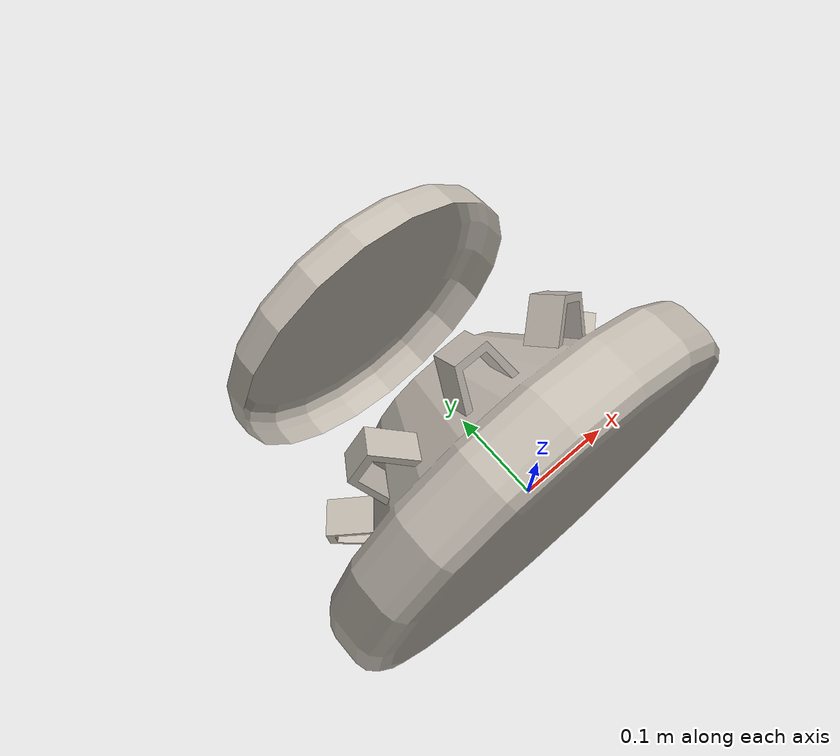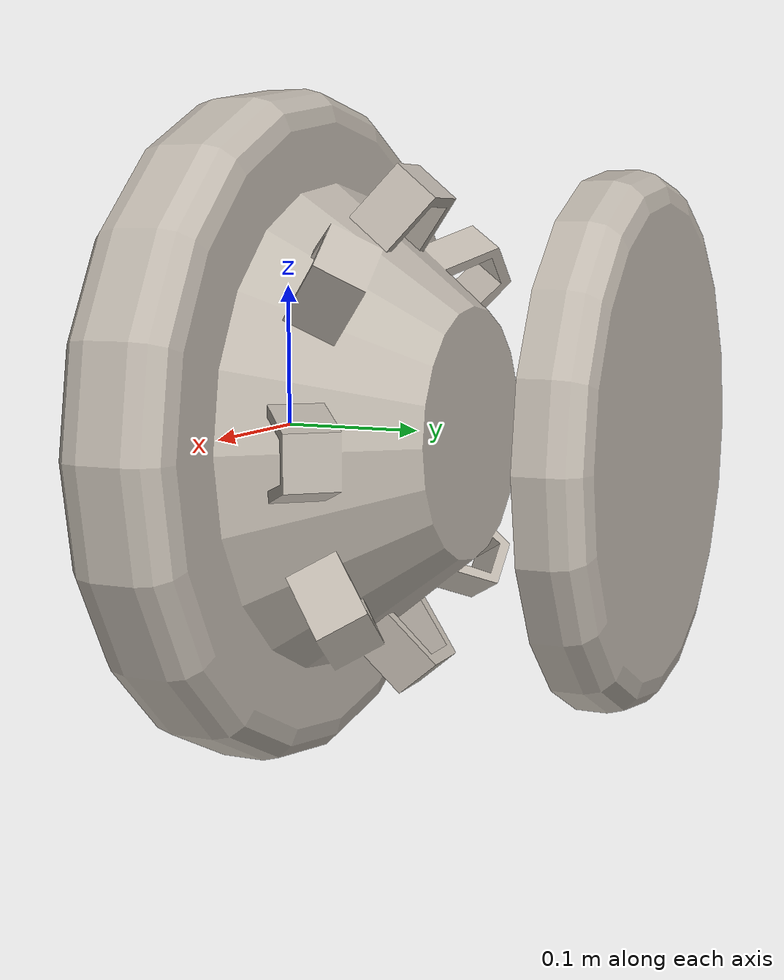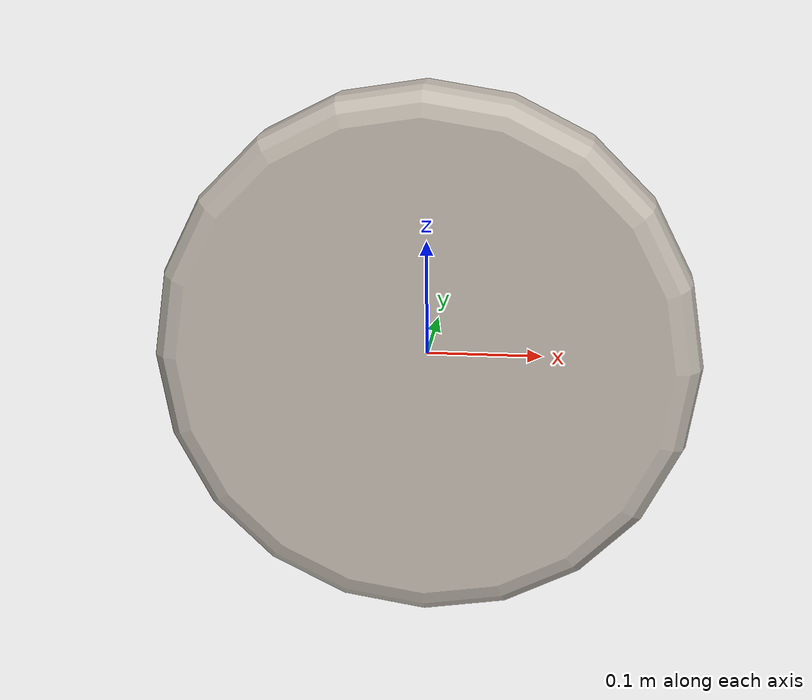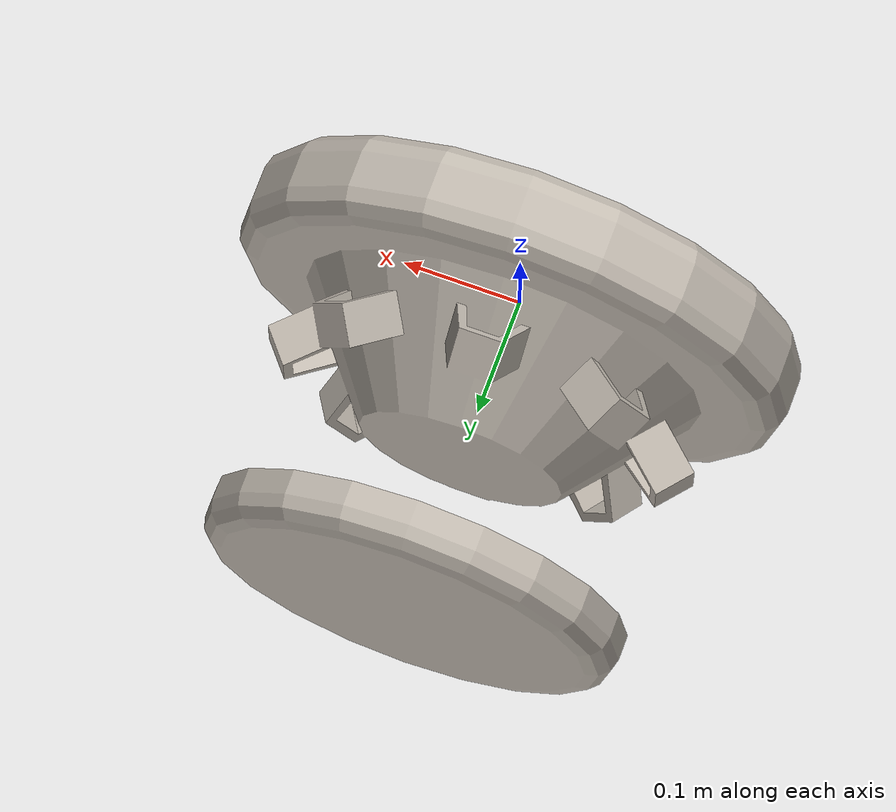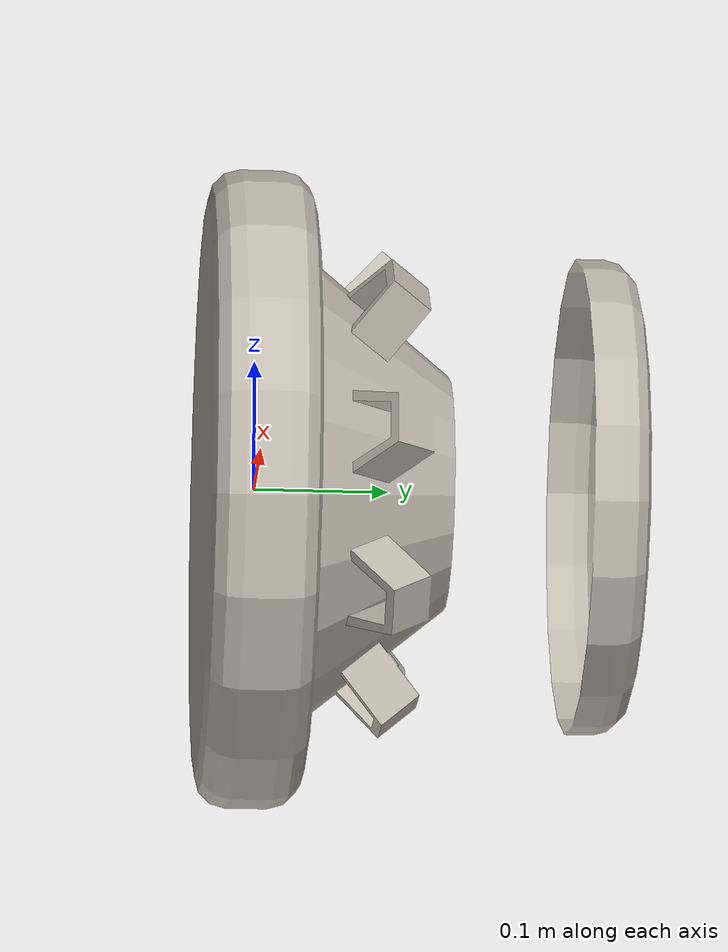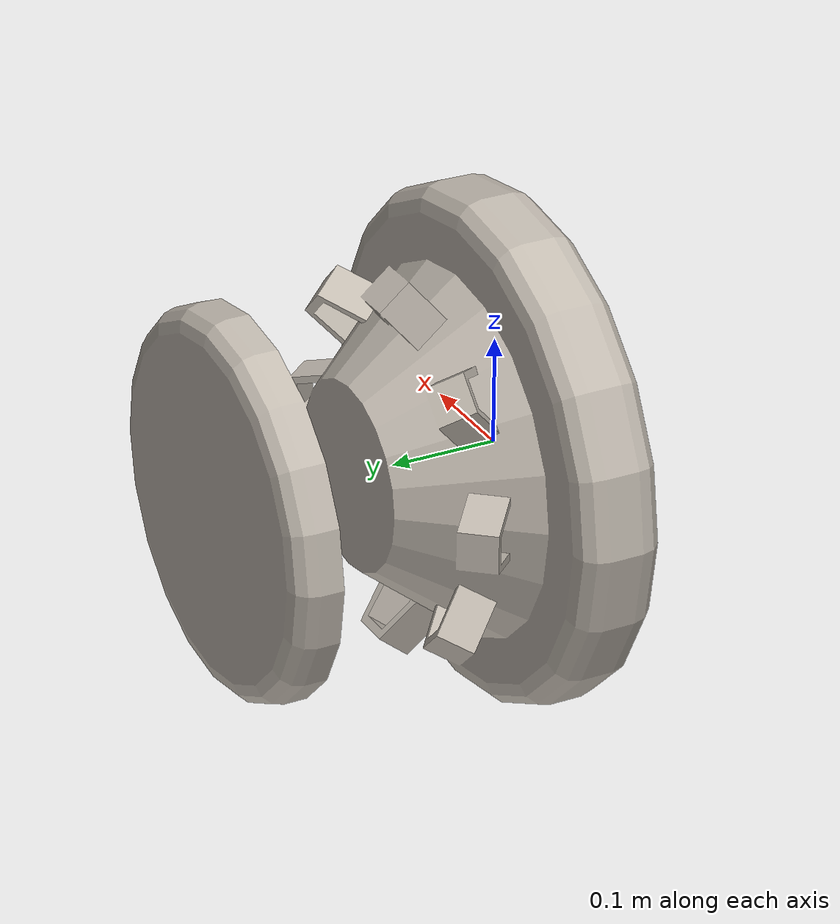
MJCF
<mujoco model="0af3d81c117e4e8aa84757b8f0df2ea8">
  <default>
    <default class="visual">
      <geom group="2" type="mesh" contype="0" conaffinity="0"/>
    </default>
    <default class="collision">
      <geom group="3" type="mesh"/>
    </default>
  </default>
  <asset>
    <texture type="2d" name="lambert8" file="lambert8.png"/>
    <material name="lambert8" texture="lambert8" specular="0.4000000000000001" shininess="0.001"/>
    <mesh file="0af3d81c117e4e8aa84757b8f0df2ea8.obj"/>
    <mesh file="0af3d81c117e4e8aa84757b8f0df2ea8_collision_0.obj"/>
    <mesh file="0af3d81c117e4e8aa84757b8f0df2ea8_collision_1.obj"/>
    <mesh file="0af3d81c117e4e8aa84757b8f0df2ea8_collision_2.obj"/>
    <mesh file="0af3d81c117e4e8aa84757b8f0df2ea8_collision_3.obj"/>
    <mesh file="0af3d81c117e4e8aa84757b8f0df2ea8_collision_4.obj"/>
    <mesh file="0af3d81c117e4e8aa84757b8f0df2ea8_collision_5.obj"/>
    <mesh file="0af3d81c117e4e8aa84757b8f0df2ea8_collision_6.obj"/>
    <mesh file="0af3d81c117e4e8aa84757b8f0df2ea8_collision_7.obj"/>
    <mesh file="0af3d81c117e4e8aa84757b8f0df2ea8_collision_8.obj"/>
    <mesh file="0af3d81c117e4e8aa84757b8f0df2ea8_collision_9.obj"/>
    <mesh file="0af3d81c117e4e8aa84757b8f0df2ea8_collision_10.obj"/>
    <mesh file="0af3d81c117e4e8aa84757b8f0df2ea8_collision_11.obj"/>
    <mesh file="0af3d81c117e4e8aa84757b8f0df2ea8_collision_12.obj"/>
    <mesh file="0af3d81c117e4e8aa84757b8f0df2ea8_collision_13.obj"/>
    <mesh file="0af3d81c117e4e8aa84757b8f0df2ea8_collision_14.obj"/>
    <mesh file="0af3d81c117e4e8aa84757b8f0df2ea8_collision_15.obj"/>
    <mesh file="0af3d81c117e4e8aa84757b8f0df2ea8_collision_16.obj"/>
    <mesh file="0af3d81c117e4e8aa84757b8f0df2ea8_collision_17.obj"/>
    <mesh file="0af3d81c117e4e8aa84757b8f0df2ea8_collision_18.obj"/>
    <mesh file="0af3d81c117e4e8aa84757b8f0df2ea8_collision_19.obj"/>
    <mesh file="0af3d81c117e4e8aa84757b8f0df2ea8_collision_20.obj"/>
    <mesh file="0af3d81c117e4e8aa84757b8f0df2ea8_collision_21.obj"/>
    <mesh file="0af3d81c117e4e8aa84757b8f0df2ea8_collision_22.obj"/>
    <mesh file="0af3d81c117e4e8aa84757b8f0df2ea8_collision_23.obj"/>
    <mesh file="0af3d81c117e4e8aa84757b8f0df2ea8_collision_24.obj"/>
    <mesh file="0af3d81c117e4e8aa84757b8f0df2ea8_collision_25.obj"/>
    <mesh file="0af3d81c117e4e8aa84757b8f0df2ea8_collision_26.obj"/>
    <mesh file="0af3d81c117e4e8aa84757b8f0df2ea8_collision_27.obj"/>
    <mesh file="0af3d81c117e4e8aa84757b8f0df2ea8_collision_28.obj"/>
    <mesh file="0af3d81c117e4e8aa84757b8f0df2ea8_collision_29.obj"/>
    <mesh file="0af3d81c117e4e8aa84757b8f0df2ea8_collision_30.obj"/>
    <mesh file="0af3d81c117e4e8aa84757b8f0df2ea8_collision_31.obj"/>
    <mesh file="0af3d81c117e4e8aa84757b8f0df2ea8_collision_32.obj"/>
    <mesh file="0af3d81c117e4e8aa84757b8f0df2ea8_collision_33.obj"/>
    <mesh file="0af3d81c117e4e8aa84757b8f0df2ea8_collision_34.obj"/>
    <mesh file="0af3d81c117e4e8aa84757b8f0df2ea8_collision_35.obj"/>
    <mesh file="0af3d81c117e4e8aa84757b8f0df2ea8_collision_36.obj"/>
    <mesh file="0af3d81c117e4e8aa84757b8f0df2ea8_collision_37.obj"/>
    <mesh file="0af3d81c117e4e8aa84757b8f0df2ea8_collision_38.obj"/>
    <mesh file="0af3d81c117e4e8aa84757b8f0df2ea8_collision_39.obj"/>
    <mesh file="0af3d81c117e4e8aa84757b8f0df2ea8_collision_40.obj"/>
    <mesh file="0af3d81c117e4e8aa84757b8f0df2ea8_collision_41.obj"/>
    <mesh file="0af3d81c117e4e8aa84757b8f0df2ea8_collision_42.obj"/>
    <mesh file="0af3d81c117e4e8aa84757b8f0df2ea8_collision_43.obj"/>
    <mesh file="0af3d81c117e4e8aa84757b8f0df2ea8_collision_44.obj"/>
    <mesh file="0af3d81c117e4e8aa84757b8f0df2ea8_collision_45.obj"/>
    <mesh file="0af3d81c117e4e8aa84757b8f0df2ea8_collision_46.obj"/>
    <mesh file="0af3d81c117e4e8aa84757b8f0df2ea8_collision_47.obj"/>
    <mesh file="0af3d81c117e4e8aa84757b8f0df2ea8_collision_48.obj"/>
    <mesh file="0af3d81c117e4e8aa84757b8f0df2ea8_collision_49.obj"/>
    <mesh file="0af3d81c117e4e8aa84757b8f0df2ea8_collision_50.obj"/>
    <mesh file="0af3d81c117e4e8aa84757b8f0df2ea8_collision_51.obj"/>
    <mesh file="0af3d81c117e4e8aa84757b8f0df2ea8_collision_52.obj"/>
    <mesh file="0af3d81c117e4e8aa84757b8f0df2ea8_collision_53.obj"/>
    <mesh file="0af3d81c117e4e8aa84757b8f0df2ea8_collision_54.obj"/>
    <mesh file="0af3d81c117e4e8aa84757b8f0df2ea8_collision_55.obj"/>
    <mesh file="0af3d81c117e4e8aa84757b8f0df2ea8_collision_56.obj"/>
    <mesh file="0af3d81c117e4e8aa84757b8f0df2ea8_collision_57.obj"/>
    <mesh file="0af3d81c117e4e8aa84757b8f0df2ea8_collision_58.obj"/>
    <mesh file="0af3d81c117e4e8aa84757b8f0df2ea8_collision_59.obj"/>
    <mesh file="0af3d81c117e4e8aa84757b8f0df2ea8_collision_60.obj"/>
    <mesh file="0af3d81c117e4e8aa84757b8f0df2ea8_collision_61.obj"/>
    <mesh file="0af3d81c117e4e8aa84757b8f0df2ea8_collision_62.obj"/>
    <mesh file="0af3d81c117e4e8aa84757b8f0df2ea8_collision_63.obj"/>
    <mesh file="0af3d81c117e4e8aa84757b8f0df2ea8_collision_64.obj"/>
    <mesh file="0af3d81c117e4e8aa84757b8f0df2ea8_collision_65.obj"/>
    <mesh file="0af3d81c117e4e8aa84757b8f0df2ea8_collision_66.obj"/>
    <mesh file="0af3d81c117e4e8aa84757b8f0df2ea8_collision_67.obj"/>
    <mesh file="0af3d81c117e4e8aa84757b8f0df2ea8_collision_68.obj"/>
    <mesh file="0af3d81c117e4e8aa84757b8f0df2ea8_collision_69.obj"/>
    <mesh file="0af3d81c117e4e8aa84757b8f0df2ea8_collision_70.obj"/>
    <mesh file="0af3d81c117e4e8aa84757b8f0df2ea8_collision_71.obj"/>
    <mesh file="0af3d81c117e4e8aa84757b8f0df2ea8_collision_72.obj"/>
    <mesh file="0af3d81c117e4e8aa84757b8f0df2ea8_collision_73.obj"/>
    <mesh file="0af3d81c117e4e8aa84757b8f0df2ea8_collision_74.obj"/>
    <mesh file="0af3d81c117e4e8aa84757b8f0df2ea8_collision_75.obj"/>
    <mesh file="0af3d81c117e4e8aa84757b8f0df2ea8_collision_76.obj"/>
    <mesh file="0af3d81c117e4e8aa84757b8f0df2ea8_collision_77.obj"/>
    <mesh file="0af3d81c117e4e8aa84757b8f0df2ea8_collision_78.obj"/>
    <mesh file="0af3d81c117e4e8aa84757b8f0df2ea8_collision_79.obj"/>
    <mesh file="0af3d81c117e4e8aa84757b8f0df2ea8_collision_80.obj"/>
    <mesh file="0af3d81c117e4e8aa84757b8f0df2ea8_collision_81.obj"/>
    <mesh file="0af3d81c117e4e8aa84757b8f0df2ea8_collision_82.obj"/>
    <mesh file="0af3d81c117e4e8aa84757b8f0df2ea8_collision_83.obj"/>
    <mesh file="0af3d81c117e4e8aa84757b8f0df2ea8_collision_84.obj"/>
    <mesh file="0af3d81c117e4e8aa84757b8f0df2ea8_collision_85.obj"/>
    <mesh file="0af3d81c117e4e8aa84757b8f0df2ea8_collision_86.obj"/>
    <mesh file="0af3d81c117e4e8aa84757b8f0df2ea8_collision_87.obj"/>
    <mesh file="0af3d81c117e4e8aa84757b8f0df2ea8_collision_88.obj"/>
    <mesh file="0af3d81c117e4e8aa84757b8f0df2ea8_collision_89.obj"/>
    <mesh file="0af3d81c117e4e8aa84757b8f0df2ea8_collision_90.obj"/>
    <mesh file="0af3d81c117e4e8aa84757b8f0df2ea8_collision_91.obj"/>
    <mesh file="0af3d81c117e4e8aa84757b8f0df2ea8_collision_92.obj"/>
    <mesh file="0af3d81c117e4e8aa84757b8f0df2ea8_collision_93.obj"/>
    <mesh file="0af3d81c117e4e8aa84757b8f0df2ea8_collision_94.obj"/>
    <mesh file="0af3d81c117e4e8aa84757b8f0df2ea8_collision_95.obj"/>
  </asset>
  <worldbody>
    <body name="0af3d81c117e4e8aa84757b8f0df2ea8">
      <freejoint/>
      <geom material="lambert8" mesh="0af3d81c117e4e8aa84757b8f0df2ea8" class="visual"/>
      <geom mesh="0af3d81c117e4e8aa84757b8f0df2ea8_collision_0" rgba="0.9400696645846283 0.7830792774710258 0.9853746197354648 1" class="collision"/>
      <geom mesh="0af3d81c117e4e8aa84757b8f0df2ea8_collision_1" rgba="0.4881837335549224 0.7597404529663597 0.974912022002862 1" class="collision"/>
      <geom mesh="0af3d81c117e4e8aa84757b8f0df2ea8_collision_2" rgba="0.933074333632284 0.7551972661871467 0.5030181285014947 1" class="collision"/>
      <geom mesh="0af3d81c117e4e8aa84757b8f0df2ea8_collision_3" rgba="0.07321054947993944 0.1909063843225497 0.5722327283358267 1" class="collision"/>
      <geom mesh="0af3d81c117e4e8aa84757b8f0df2ea8_collision_4" rgba="0.5761528456520262 0.2664163343074093 0.2033461523048148 1" class="collision"/>
      <geom mesh="0af3d81c117e4e8aa84757b8f0df2ea8_collision_5" rgba="0.19915125357261565 0.6220031007308239 0.5025924545572282 1" class="collision"/>
      <geom mesh="0af3d81c117e4e8aa84757b8f0df2ea8_collision_6" rgba="0.2605447512380712 0.7699415877257008 0.7207924982176922 1" class="collision"/>
      <geom mesh="0af3d81c117e4e8aa84757b8f0df2ea8_collision_7" rgba="0.5909902385149364 0.9543306728776397 0.4155498122475747 1" class="collision"/>
      <geom mesh="0af3d81c117e4e8aa84757b8f0df2ea8_collision_8" rgba="0.0492750699213198 0.3120395836094738 0.9973688697059966 1" class="collision"/>
      <geom mesh="0af3d81c117e4e8aa84757b8f0df2ea8_collision_9" rgba="0.5276606084492134 0.7631595058295976 0.9477163637506832 1" class="collision"/>
      <geom mesh="0af3d81c117e4e8aa84757b8f0df2ea8_collision_10" rgba="0.1305754355067068 0.5194932225255651 0.15485142528004192 1" class="collision"/>
      <geom mesh="0af3d81c117e4e8aa84757b8f0df2ea8_collision_11" rgba="0.18168264868086315 0.027615646756597223 0.8793477006129089 1" class="collision"/>
      <geom mesh="0af3d81c117e4e8aa84757b8f0df2ea8_collision_12" rgba="0.2871997447086483 0.02609706724331995 0.1507247353187705 1" class="collision"/>
      <geom mesh="0af3d81c117e4e8aa84757b8f0df2ea8_collision_13" rgba="0.11928735776189392 0.6306177894466148 0.7040527739449843 1" class="collision"/>
      <geom mesh="0af3d81c117e4e8aa84757b8f0df2ea8_collision_14" rgba="0.9461437283648724 0.3058370440005135 0.5633940367874035 1" class="collision"/>
      <geom mesh="0af3d81c117e4e8aa84757b8f0df2ea8_collision_15" rgba="0.5070113076847969 0.11875824607810503 0.4548225534941881 1" class="collision"/>
      <geom mesh="0af3d81c117e4e8aa84757b8f0df2ea8_collision_16" rgba="0.5695329334977991 0.36180376418645377 0.06731535669623456 1" class="collision"/>
      <geom mesh="0af3d81c117e4e8aa84757b8f0df2ea8_collision_17" rgba="0.7585497598741587 0.4719734319531268 0.7150217229253767 1" class="collision"/>
      <geom mesh="0af3d81c117e4e8aa84757b8f0df2ea8_collision_18" rgba="0.6463786734805796 0.8806193499274555 0.35364003243045683 1" class="collision"/>
      <geom mesh="0af3d81c117e4e8aa84757b8f0df2ea8_collision_19" rgba="0.17093911996363387 0.7669126170192869 0.3599991414862187 1" class="collision"/>
      <geom mesh="0af3d81c117e4e8aa84757b8f0df2ea8_collision_20" rgba="0.7551813420031183 0.09923484847631092 0.8412020403820564 1" class="collision"/>
      <geom mesh="0af3d81c117e4e8aa84757b8f0df2ea8_collision_21" rgba="0.22633163698269643 0.24512253804010042 0.7706308218826492 1" class="collision"/>
      <geom mesh="0af3d81c117e4e8aa84757b8f0df2ea8_collision_22" rgba="0.4327197783265416 0.5871756910358343 0.15721004492162916 1" class="collision"/>
      <geom mesh="0af3d81c117e4e8aa84757b8f0df2ea8_collision_23" rgba="0.7867419358310731 0.36837669972274945 0.8187785730327048 1" class="collision"/>
      <geom mesh="0af3d81c117e4e8aa84757b8f0df2ea8_collision_24" rgba="0.9159984609527843 0.7224537996983158 0.5479083838768867 1" class="collision"/>
      <geom mesh="0af3d81c117e4e8aa84757b8f0df2ea8_collision_25" rgba="0.584409408859655 0.7055909667687521 0.845584117123495 1" class="collision"/>
      <geom mesh="0af3d81c117e4e8aa84757b8f0df2ea8_collision_26" rgba="0.2538820914031259 0.979257758724111 0.15313853909569675 1" class="collision"/>
      <geom mesh="0af3d81c117e4e8aa84757b8f0df2ea8_collision_27" rgba="0.25010751254342467 0.42099770821301674 0.25692381901081074 1" class="collision"/>
      <geom mesh="0af3d81c117e4e8aa84757b8f0df2ea8_collision_28" rgba="0.9969447640301486 0.32181089296623844 0.17991616186393322 1" class="collision"/>
      <geom mesh="0af3d81c117e4e8aa84757b8f0df2ea8_collision_29" rgba="0.10481436397984112 0.4557797690903922 0.37672226402585673 1" class="collision"/>
      <geom mesh="0af3d81c117e4e8aa84757b8f0df2ea8_collision_30" rgba="0.9741015787207185 0.25494231536781653 0.982653732292212 1" class="collision"/>
      <geom mesh="0af3d81c117e4e8aa84757b8f0df2ea8_collision_31" rgba="0.6964018916304547 0.2225977732955332 0.11141685378634314 1" class="collision"/>
      <geom mesh="0af3d81c117e4e8aa84757b8f0df2ea8_collision_32" rgba="0.9806533152651608 0.33284806012254775 0.8824308623368804 1" class="collision"/>
      <geom mesh="0af3d81c117e4e8aa84757b8f0df2ea8_collision_33" rgba="0.743303068669287 0.7442100880104416 0.9531261061797326 1" class="collision"/>
      <geom mesh="0af3d81c117e4e8aa84757b8f0df2ea8_collision_34" rgba="0.5009620875034011 0.799166347001497 0.967219339946368 1" class="collision"/>
      <geom mesh="0af3d81c117e4e8aa84757b8f0df2ea8_collision_35" rgba="0.7887179580926721 0.30289786420160303 0.9261287365728021 1" class="collision"/>
      <geom mesh="0af3d81c117e4e8aa84757b8f0df2ea8_collision_36" rgba="0.5795012837210707 0.9225372271854307 0.4713360558373594 1" class="collision"/>
      <geom mesh="0af3d81c117e4e8aa84757b8f0df2ea8_collision_37" rgba="0.567166283183288 0.08213603095763222 0.19602538417405435 1" class="collision"/>
      <geom mesh="0af3d81c117e4e8aa84757b8f0df2ea8_collision_38" rgba="0.6322504120340808 0.06128239068868013 0.8742339188844643 1" class="collision"/>
      <geom mesh="0af3d81c117e4e8aa84757b8f0df2ea8_collision_39" rgba="0.6537680138166968 0.7903413255157358 0.5385044866571856 1" class="collision"/>
      <geom mesh="0af3d81c117e4e8aa84757b8f0df2ea8_collision_40" rgba="0.9779518804270252 0.904629942163356 0.9177456853488504 1" class="collision"/>
      <geom mesh="0af3d81c117e4e8aa84757b8f0df2ea8_collision_41" rgba="0.6255983965387354 0.12037790133392201 0.5862055930856432 1" class="collision"/>
      <geom mesh="0af3d81c117e4e8aa84757b8f0df2ea8_collision_42" rgba="0.9444152336620754 0.4028735200685437 0.9959608641835931 1" class="collision"/>
      <geom mesh="0af3d81c117e4e8aa84757b8f0df2ea8_collision_43" rgba="0.3292621829425103 0.7676088381199933 0.7084786933653078 1" class="collision"/>
      <geom mesh="0af3d81c117e4e8aa84757b8f0df2ea8_collision_44" rgba="0.3678474265700824 0.8263707092260454 0.9555351113588928 1" class="collision"/>
      <geom mesh="0af3d81c117e4e8aa84757b8f0df2ea8_collision_45" rgba="0.5758203405045685 0.5931870769968746 0.8551287404248105 1" class="collision"/>
      <geom mesh="0af3d81c117e4e8aa84757b8f0df2ea8_collision_46" rgba="0.15812225535190905 0.2084535031743624 0.6470556671204709 1" class="collision"/>
      <geom mesh="0af3d81c117e4e8aa84757b8f0df2ea8_collision_47" rgba="0.22158021243019843 0.8543288440926875 0.24057538996502348 1" class="collision"/>
      <geom mesh="0af3d81c117e4e8aa84757b8f0df2ea8_collision_48" rgba="0.6810655117329385 0.733547443519815 0.8028527143321539 1" class="collision"/>
      <geom mesh="0af3d81c117e4e8aa84757b8f0df2ea8_collision_49" rgba="0.14735392980338735 0.9003147140170489 0.008023998803652788 1" class="collision"/>
      <geom mesh="0af3d81c117e4e8aa84757b8f0df2ea8_collision_50" rgba="0.6449762260451478 0.29139472404255784 0.9968053598740253 1" class="collision"/>
      <geom mesh="0af3d81c117e4e8aa84757b8f0df2ea8_collision_51" rgba="0.4284866104118149 0.9946217633292965 0.08443663859551376 1" class="collision"/>
      <geom mesh="0af3d81c117e4e8aa84757b8f0df2ea8_collision_52" rgba="0.3737751903534182 0.1107826965830151 0.8750607760657951 1" class="collision"/>
      <geom mesh="0af3d81c117e4e8aa84757b8f0df2ea8_collision_53" rgba="0.24335517459261358 0.03955403020802106 0.38364152006758534 1" class="collision"/>
      <geom mesh="0af3d81c117e4e8aa84757b8f0df2ea8_collision_54" rgba="0.3649728453347709 0.4054023831826499 0.3460843576311591 1" class="collision"/>
      <geom mesh="0af3d81c117e4e8aa84757b8f0df2ea8_collision_55" rgba="0.0944278490244913 0.8730565139488456 0.18736174336474742 1" class="collision"/>
      <geom mesh="0af3d81c117e4e8aa84757b8f0df2ea8_collision_56" rgba="0.40800953362512804 0.2799931159390944 0.36567265043952224 1" class="collision"/>
      <geom mesh="0af3d81c117e4e8aa84757b8f0df2ea8_collision_57" rgba="0.18072839518361627 0.6847219728292631 0.81766180365745 1" class="collision"/>
      <geom mesh="0af3d81c117e4e8aa84757b8f0df2ea8_collision_58" rgba="0.41135753205251413 0.5256380041626938 0.34574161565750816 1" class="collision"/>
      <geom mesh="0af3d81c117e4e8aa84757b8f0df2ea8_collision_59" rgba="0.9783497341531433 0.27521400486823233 0.8962552708486462 1" class="collision"/>
      <geom mesh="0af3d81c117e4e8aa84757b8f0df2ea8_collision_60" rgba="0.013374485319580853 0.6259955272562329 0.5352388883688373 1" class="collision"/>
      <geom mesh="0af3d81c117e4e8aa84757b8f0df2ea8_collision_61" rgba="0.6886444091780499 0.6858669513774988 0.6947825962943441 1" class="collision"/>
      <geom mesh="0af3d81c117e4e8aa84757b8f0df2ea8_collision_62" rgba="0.9643834068145593 0.44130690303605347 0.6442383274334512 1" class="collision"/>
      <geom mesh="0af3d81c117e4e8aa84757b8f0df2ea8_collision_63" rgba="0.21277972474825446 0.6190491021864811 0.21782104267412106 1" class="collision"/>
      <geom mesh="0af3d81c117e4e8aa84757b8f0df2ea8_collision_64" rgba="0.7787167228330271 0.30436814252649813 0.6108895971620957 1" class="collision"/>
      <geom mesh="0af3d81c117e4e8aa84757b8f0df2ea8_collision_65" rgba="0.9675103981917413 0.853170441263318 0.555028896898377 1" class="collision"/>
      <geom mesh="0af3d81c117e4e8aa84757b8f0df2ea8_collision_66" rgba="0.39072685324452094 0.8066003356734862 0.2610081030480671 1" class="collision"/>
      <geom mesh="0af3d81c117e4e8aa84757b8f0df2ea8_collision_67" rgba="0.7957924266332701 0.9941045352869672 0.016991923250769703 1" class="collision"/>
      <geom mesh="0af3d81c117e4e8aa84757b8f0df2ea8_collision_68" rgba="0.6399920115504122 0.5463307337820513 0.48773477206595084 1" class="collision"/>
      <geom mesh="0af3d81c117e4e8aa84757b8f0df2ea8_collision_69" rgba="0.3339017775001535 0.7099928692884812 0.2912719471455073 1" class="collision"/>
      <geom mesh="0af3d81c117e4e8aa84757b8f0df2ea8_collision_70" rgba="0.7858428428161652 0.31876462028332764 0.34712687270243947 1" class="collision"/>
      <geom mesh="0af3d81c117e4e8aa84757b8f0df2ea8_collision_71" rgba="0.3548516492341195 0.07164934310830873 0.05980963194514943 1" class="collision"/>
      <geom mesh="0af3d81c117e4e8aa84757b8f0df2ea8_collision_72" rgba="0.6299992830267899 0.7964550114161508 0.14763137712890484 1" class="collision"/>
      <geom mesh="0af3d81c117e4e8aa84757b8f0df2ea8_collision_73" rgba="0.3329797069720358 0.5810923768832148 0.9277739069131367 1" class="collision"/>
      <geom mesh="0af3d81c117e4e8aa84757b8f0df2ea8_collision_74" rgba="0.1830637079287314 0.9171562690517528 0.6920785062419965 1" class="collision"/>
      <geom mesh="0af3d81c117e4e8aa84757b8f0df2ea8_collision_75" rgba="0.006484764137700494 0.9493719557114844 0.13889057370366265 1" class="collision"/>
      <geom mesh="0af3d81c117e4e8aa84757b8f0df2ea8_collision_76" rgba="0.36439450911098836 0.23622811993937454 0.33276281506947114 1" class="collision"/>
      <geom mesh="0af3d81c117e4e8aa84757b8f0df2ea8_collision_77" rgba="0.2940809713096064 0.49177581537934334 0.19425381522229468 1" class="collision"/>
      <geom mesh="0af3d81c117e4e8aa84757b8f0df2ea8_collision_78" rgba="0.4879535617231301 0.5383175558916021 0.43244927443416925 1" class="collision"/>
      <geom mesh="0af3d81c117e4e8aa84757b8f0df2ea8_collision_79" rgba="0.7218120262663299 0.3834821814438675 0.06509628974560489 1" class="collision"/>
      <geom mesh="0af3d81c117e4e8aa84757b8f0df2ea8_collision_80" rgba="0.7858795612371946 0.6223780720686116 0.7574720653299075 1" class="collision"/>
      <geom mesh="0af3d81c117e4e8aa84757b8f0df2ea8_collision_81" rgba="0.5509799777776633 0.3900591657017266 0.4732387487864741 1" class="collision"/>
      <geom mesh="0af3d81c117e4e8aa84757b8f0df2ea8_collision_82" rgba="0.4243301008993592 0.4754504928347333 0.6883853297180118 1" class="collision"/>
      <geom mesh="0af3d81c117e4e8aa84757b8f0df2ea8_collision_83" rgba="0.5686697333954254 0.7952180036596467 0.03245276114780016 1" class="collision"/>
      <geom mesh="0af3d81c117e4e8aa84757b8f0df2ea8_collision_84" rgba="0.22949733260862304 0.7527611183009135 0.9840176393839897 1" class="collision"/>
      <geom mesh="0af3d81c117e4e8aa84757b8f0df2ea8_collision_85" rgba="0.8327579249915469 0.8646125978782245 0.014056638073488559 1" class="collision"/>
      <geom mesh="0af3d81c117e4e8aa84757b8f0df2ea8_collision_86" rgba="0.7613140721032249 0.7020365800307156 0.5241720529259587 1" class="collision"/>
      <geom mesh="0af3d81c117e4e8aa84757b8f0df2ea8_collision_87" rgba="0.15713483277739726 0.4134976651184362 0.508383967745591 1" class="collision"/>
      <geom mesh="0af3d81c117e4e8aa84757b8f0df2ea8_collision_88" rgba="0.8446772965000129 0.34356765992602245 0.7674129655504546 1" class="collision"/>
      <geom mesh="0af3d81c117e4e8aa84757b8f0df2ea8_collision_89" rgba="0.6445708304550084 0.7312438687559868 0.09657823264345589 1" class="collision"/>
      <geom mesh="0af3d81c117e4e8aa84757b8f0df2ea8_collision_90" rgba="0.0845495461582555 0.5785822407907237 0.8948159468885715 1" class="collision"/>
      <geom mesh="0af3d81c117e4e8aa84757b8f0df2ea8_collision_91" rgba="0.38008991568184636 0.24279529171081582 0.8756962865022874 1" class="collision"/>
      <geom mesh="0af3d81c117e4e8aa84757b8f0df2ea8_collision_92" rgba="0.7825576229546276 0.754210947424703 0.4103095414256127 1" class="collision"/>
      <geom mesh="0af3d81c117e4e8aa84757b8f0df2ea8_collision_93" rgba="0.24042786638251545 0.06880487833835514 0.5002020916371362 1" class="collision"/>
      <geom mesh="0af3d81c117e4e8aa84757b8f0df2ea8_collision_94" rgba="0.6429660027031465 0.4525294959418349 0.49001807343962245 1" class="collision"/>
      <geom mesh="0af3d81c117e4e8aa84757b8f0df2ea8_collision_95" rgba="0.7975824459078474 0.28364564609882914 0.42696898915180637 1" class="collision"/>
    </body>
  </worldbody>
</mujoco>
